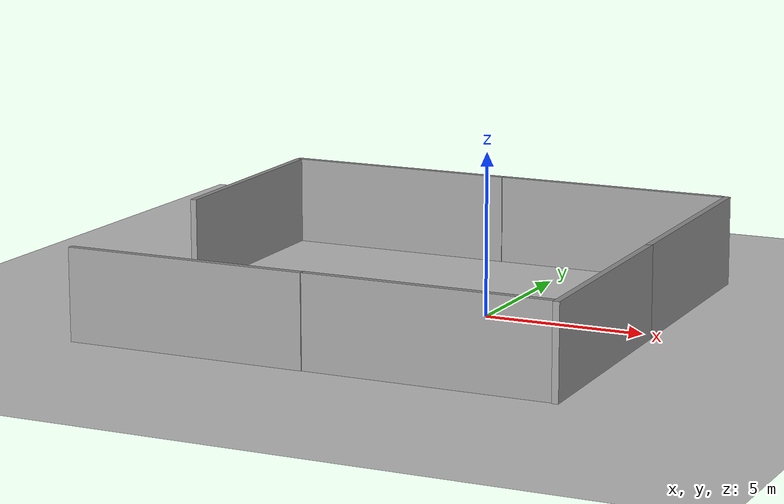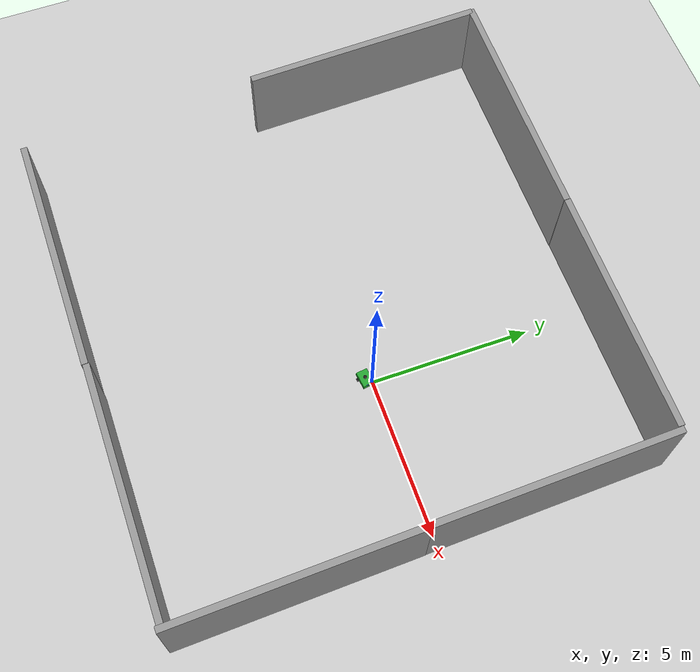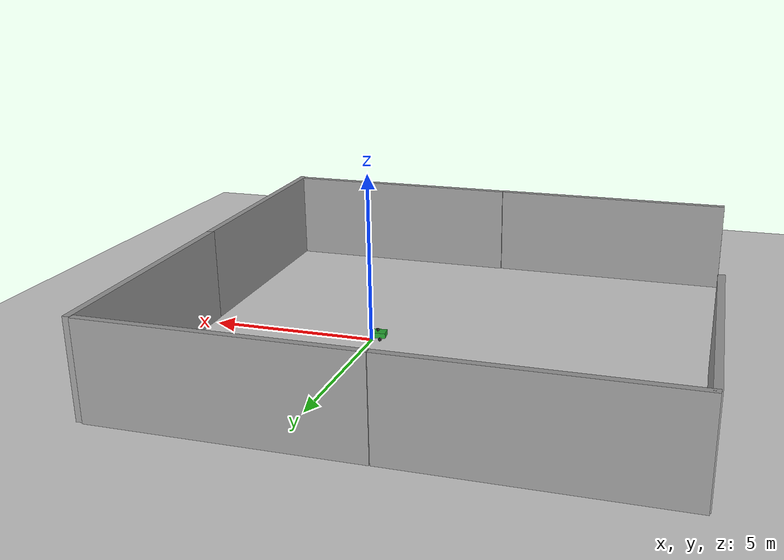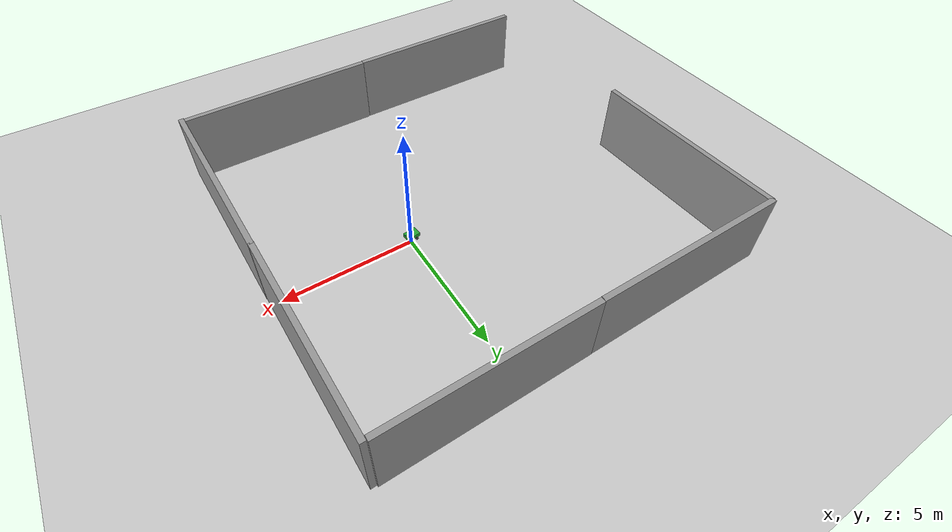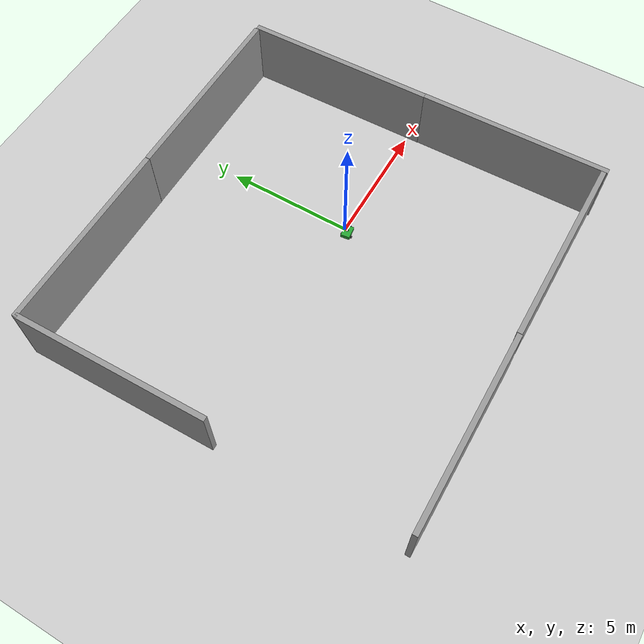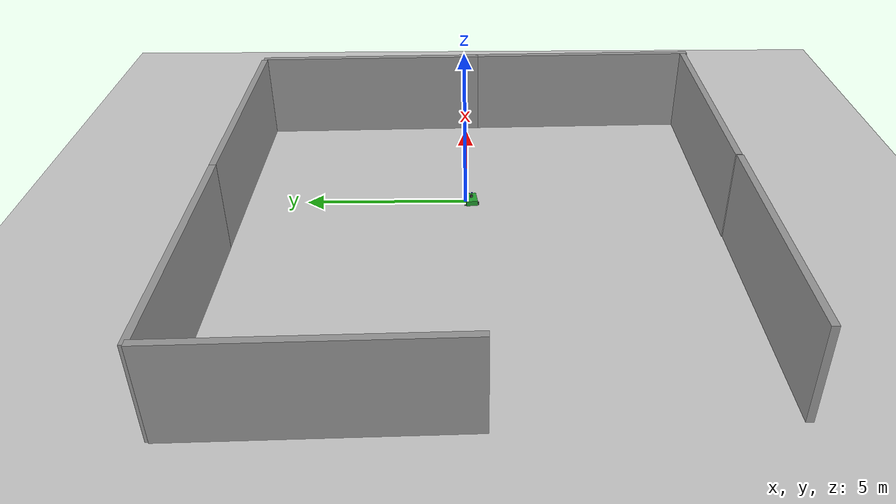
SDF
<sdf version="1.7">
 <world name="default">
  <light name="sun" type="directional">
   <pose>0 0 10 0 -0 0</pose>
   <diffuse>0.8 0.8 0.8 1</diffuse>
   <specular>0.2 0.2 0.2 1</specular>
   <attenuation>
    <range>1000</range>
    <constant>0.9</constant>
    <linear>0.01</linear>
    <quadratic>0.001</quadratic>
   </attenuation>
   <direction>-0.5 0.1 -0.9</direction>
   <spot><inner_angle>0</inner_angle><outer_angle>0</outer_angle><falloff>0</falloff></spot>
  </light>
  <model name="ground_plane">
   <static>1</static>
   <link name="link">
    <collision name="collision">
     <geometry><plane><normal>0 0 1</normal><size>100 100</size></plane></geometry>
     <surface>
      <contact><collide_bitmask>65535</collide_bitmask></contact>
      <friction><ode><mu>100</mu><mu2>50</mu2></ode></friction>
     </surface>
    </collision>
    <visual name="visual">
     <cast_shadows>0</cast_shadows>
     <geometry><plane><normal>0 0 1</normal><size>100 100</size></plane></geometry>
     <material>
      <script><uri>file://media/materials/scripts/gazebo.material</uri><name>Gazebo/Grey</name></script>
     </material>
    </visual>
   </link>
  </model>
  <gravity>0 0 -9.8</gravity>
  <magnetic_field>6e-06 2.3e-05 -4.2e-05</magnetic_field>
  <atmosphere type="adiabatic"/>
  <physics type="ode">
   <max_step_size>0.001</max_step_size>
   <real_time_factor>1</real_time_factor>
   <real_time_update_rate>1000</real_time_update_rate>
  </physics>
  <scene><ambient>0.4 0.4 0.4 1</ambient><background>0.7 0.7 0.7 1</background><shadows>1</shadows></scene>
  <spherical_coordinates>
   <surface_model>EARTH_WGS84</surface_model>
   <latitude_deg>0</latitude_deg>
   <longitude_deg>0</longitude_deg>
   <elevation>0</elevation>
   <heading_deg>0</heading_deg>
  </spherical_coordinates>
  <audio><device>default</device></audio>
  <model name="differential_drive_robot">
   <link name="base_footprint">
    <inertial>
     <pose>0.002469 0 -0.001307 0 -0 0</pose>
     <mass>77.719</mass>
     <inertia>
      <ixx>0.956654</ixx>
      <ixy>0</ixy>
      <ixz>0.00943868</ixz>
      <iyy>1.7886</iyy>
      <iyz>0</iyz>
      <izz>2.38371</izz>
     </inertia>
    </inertial>
    <collision name="base_footprint_fixed_joint_lump__body_link_collision">
     <geometry><box><size>0.5 0.35 0.16</size></box></geometry>
     <surface><friction><ode><mu>0.2</mu><mu2>0.2</mu2></ode></friction></surface>
    </collision>
    <collision name="base_footprint_fixed_joint_lump__camera_link_collision_1">
     <pose>0.25 0.05 0.09 0 0.2 0</pose>
     <geometry><box><size>0.03 0.05 0.05</size></box></geometry>
    </collision>
    <collision name="base_footprint_fixed_joint_lump__caster_link_collision_2">
     <pose>0.1 0 -0.1 0 -0 0</pose>
     <geometry><sphere><radius>0.05</radius></sphere></geometry>
     <surface><friction><ode><mu>2e-06</mu><mu2>2e-06</mu2></ode></friction></surface>
    </collision>
    <collision name="base_footprint_fixed_joint_lump__depth_camera_link_collision_3">
     <pose>0.25 -0.05 0.09 0 0.2 0</pose>
     <geometry><box><size>0.03 0.05 0.05</size></box></geometry>
    </collision>
    <collision name="base_footprint_fixed_joint_lump__gps_link_collision_4">
     <pose>0 0 0.1 0 -0 0</pose>
     <geometry><cylinder><length>0.01</length><radius>0.01</radius></cylinder></geometry>
    </collision>
    <collision name="base_footprint_fixed_joint_lump__imu_link_collision_5">
     <pose>0 0 0.03 0 -0 0</pose>
     <geometry><box><size>0.02 0.02 0.01</size></box></geometry>
    </collision>
    <collision name="base_footprint_fixed_joint_lump__lidar_connector_link_collision_6">
     <pose>0 0 0.08 0 -0 0</pose>
     <geometry><cylinder><length>0.06</length><radius>0.02</radius></cylinder></geometry>
     <surface><friction><ode><mu>2e-06</mu><mu2>2e-06</mu2></ode></friction></surface>
    </collision>
    <collision name="base_footprint_fixed_joint_lump__lidar_link_collision_7">
     <pose>0 0 0.13 0 -0 0</pose>
     <geometry><cylinder><length>0.04</length><radius>0.05</radius></cylinder></geometry>
    </collision>
    <visual name="base_footprint_fixed_joint_lump__body_link_visual">
     <geometry><box><size>0.5 0.35 0.16</size></box></geometry>
     <material>
      <script><name>Gazebo/Green</name><uri>file://media/materials/scripts/gazebo.material</uri></script>
     </material>
    </visual>
    <visual name="base_footprint_fixed_joint_lump__camera_link_visual_1">
     <pose>0.25 0.05 0.09 3.14159 1.3708 3.14159</pose>
     <geometry><box><size>0.03 0.05 0.02</size></box></geometry>
     <material>
      <script><name>Gazebo/Orange</name><uri>file://media/materials/scripts/gazebo.material</uri></script>
     </material>
    </visual>
    <visual name="base_footprint_fixed_joint_lump__caster_link_visual_2">
     <pose>0.1 0 -0.1 0 -0 0</pose>
     <geometry><sphere><radius>0.05</radius></sphere></geometry>
     <material>
      <script><name>Gazebo/Gray</name><uri>file://media/materials/scripts/gazebo.material</uri></script>
     </material>
    </visual>
    <visual name="base_footprint_fixed_joint_lump__depth_camera_link_visual_3">
     <pose>0.25 -0.05 0.09 3.14159 1.3708 3.14159</pose>
     <geometry><box><size>0.03 0.05 0.02</size></box></geometry>
     <material>
      <script><name>Gazebo/Blue</name><uri>file://media/materials/scripts/gazebo.material</uri></script>
     </material>
    </visual>
    <visual name="base_footprint_fixed_joint_lump__gps_link_visual_4">
     <pose>0 0 0.1 0 -0 0</pose>
     <geometry><cylinder><length>0.01</length><radius>0.01</radius></cylinder></geometry>
     <material>
      <script><name>Gazebo/White</name><uri>file://media/materials/scripts/gazebo.material</uri></script>
     </material>
    </visual>
    <visual name="base_footprint_fixed_joint_lump__imu_link_visual_5">
     <pose>0 0 0.03 0 -0 0</pose>
     <geometry><box><size>0.02 0.02 0.01</size></box></geometry>
     <material>
      <script><name>Gazebo/Red</name><uri>file://media/materials/scripts/gazebo.material</uri></script>
     </material>
    </visual>
    <visual name="base_footprint_fixed_joint_lump__lidar_connector_link_visual_6">
     <pose>0 0 0.08 0 -0 0</pose>
     <geometry><cylinder><length>0.06</length><radius>0.02</radius></cylinder></geometry>
     <material>
      <script><name>Gazebo/Black</name><uri>file://media/materials/scripts/gazebo.material</uri></script>
     </material>
    </visual>
    <visual name="base_footprint_fixed_joint_lump__lidar_link_visual_7">
     <pose>0 0 0.13 0 -0 0</pose>
     <geometry><cylinder><length>0.04</length><radius>0.05</radius></cylinder></geometry>
     <material>
      <script><name>Gazebo/Black</name><uri>file://media/materials/scripts/gazebo.material</uri></script>
     </material>
    </visual>
    <sensor name="camera" type="camera">
     <camera>
      <horizontal_fov>1.39626</horizontal_fov>
      <image><width>640</width><height>480</height><format>R8G8B8</format></image>
      <clip><near>0.02</near><far>300</far></clip>
      <noise><type>gaussian</type><mean>0</mean><stddev>0.007</stddev></noise>
     </camera>
     <always_on>1</always_on>
     <update_rate>30</update_rate>
     <visualize>1</visualize>
     <plugin name="camera_controller" filename="libgazebo_ros_camera.so">
      <ros>
       <namespace>/</namespace>
       <remapping>image_raw:=camera/image_raw</remapping>
       <remapping>camera_info:=camera/camera_info</remapping>
      </ros>
      <output_type>sensor_msgs/Image</output_type>
      <frame_name>camera_optical_frame</frame_name>
      <camera_name>camera</camera_name>
      <update_rate>30.0</update_rate>
     </plugin>
     <pose>0.25 0.05 0.09 0 0.2 0</pose>
    </sensor>
    <sensor name="depth_camera" type="depth">
     <camera>
      <horizontal_fov>1.0472</horizontal_fov>
      <image><width>640</width><height>480</height><format>R8G8B8</format></image>
      <clip><near>0.05</near><far>8</far></clip>
      <noise><type>gaussian</type><mean>0</mean><stddev>0.007</stddev></noise>
     </camera>
     <always_on>1</always_on>
     <update_rate>20</update_rate>
     <visualize>1</visualize>
     <plugin name="depth_camera_controller" filename="libgazebo_ros_camera.so">
      <ros>
       <namespace>/</namespace>
       <remapping>image_raw:=depth_camera/image_raw</remapping>
       <remapping>camera_info:=depth_camera/camera_info</remapping>
       <remapping>points:=depth_camera/points</remapping>
      </ros>
      <camera_name>depth_camera</camera_name>
      <frame_name>depth_camera_optical_frame</frame_name>
      <hack_baseline>0.07</hack_baseline>
      <output_type>sensor_msgs/PointCloud2</output_type>
      <distortion_k1>0.0</distortion_k1>
      <distortion_k2>0.0</distortion_k2>
      <distortion_k3>0.0</distortion_k3>
      <distortion_t1>0.0</distortion_t1>
      <distortion_t2>0.0</distortion_t2>
     </plugin>
     <pose>0.25 -0.05 0.09 0 0.2 0</pose>
    </sensor>
    <sensor name="gps" type="gps">
     <always_on>1</always_on>
     <update_rate>10</update_rate>
     <visualize>1</visualize>
     <topic>gps/fix</topic>
     <plugin name="gps_controller" filename="libgazebo_ros_gps_sensor.so">
      <ros><namespace>/</namespace><remapping>~/out:=gps/fix</remapping></ros>
      <frame_name>gps_link</frame_name>
      <reference_latitude>49.9</reference_latitude>
      <reference_longitude>8.9</reference_longitude>
      <reference_altitude>0.0</reference_altitude>
      <reference_heading>0.0</reference_heading>
      <position_noise><x>0.05</x><y>0.05</y><z>0.05</z></position_noise>
      <velocity_noise><x>0.01</x><y>0.01</y><z>0.01</z></velocity_noise>
     </plugin>
     <pose>0 0 0.1 0 -0 0</pose>
    </sensor>
    <sensor name="imu_sensor" type="imu">
     <always_on>1</always_on>
     <update_rate>100</update_rate>
     <visualize>1</visualize>
     <topic>imu</topic>
     <plugin name="imu_plugin" filename="libgazebo_ros_imu_sensor.so">
      <ros><namespace>/</namespace><remapping>~/out:=imu/data</remapping></ros>
      <topicName>imu/data</topicName>
      <bodyName>imu_link</bodyName>
      <frameName>imu_link</frameName>
      <initialOrientationAsReference>0</initialOrientationAsReference>
      <accelDrift>0.005 0.005 0.005</accelDrift>
      <accelGaussianNoise>0.005 0.005 0.005</accelGaussianNoise>
      <rateDrift>0.005 0.005 0.005</rateDrift>
      <rateGaussianNoise>0.005 0.005 0.005</rateGaussianNoise>
      <headingDrift>0.005</headingDrift>
      <headingGaussianNoise>0.005</headingGaussianNoise>
     </plugin>
     <pose>0 0 0.03 0 -0 0</pose>
    </sensor>
    <sensor name="lidar" type="ray">
     <visualize>1</visualize>
     <update_rate>10</update_rate>
     <ray>
      <scan>
       <horizontal>
        <samples>360</samples>
        <resolution>1</resolution>
        <min_angle>-3.14159</min_angle>
        <max_angle>3.14159</max_angle>
       </horizontal>
       <vertical><samples>1</samples><min_angle>0</min_angle><max_angle>0</max_angle></vertical>
      </scan>
      <range><min>0.1</min><max>10</max><resolution>0.01</resolution></range>
      <noise><type>gaussian</type><mean>0</mean><stddev>0.01</stddev></noise>
     </ray>
     <plugin name="lidar_controller" filename="libgazebo_ros_ray_sensor.so">
      <ros><namespace>/</namespace><remapping>~/out:=scan</remapping></ros>
      <output_type>sensor_msgs/LaserScan</output_type>
      <frame_name>lidar_link</frame_name>
     </plugin>
     <pose>0 0 0.13 0 -0 0</pose>
    </sensor>
   </link>
   <joint name="left_wheel_joint" type="revolute">
    <pose relative_to="base_footprint">-0.1 0.2 -0.1 0 -0 0</pose>
    <parent>base_footprint</parent>
    <child>left_wheel_link</child>
    <axis>
     <xyz>0 1 0</xyz>
     <limit><effort>1000</effort><velocity>1000</velocity><lower>-1e+16</lower><upper>1e+16</upper></limit>
     <dynamics>
      <damping>1</damping>
      <friction>1</friction>
      <spring_reference>0</spring_reference>
      <spring_stiffness>0</spring_stiffness>
     </dynamics>
    </axis>
   </joint>
   <link name="left_wheel_link">
    <pose relative_to="left_wheel_joint">0 0 0 0 -0 0</pose>
    <inertial>
     <mass>1.06421</mass>
     <inertia>
      <ixx>0.000886845</ixx>
      <ixy>0</ixy>
      <ixz>0</ixz>
      <iyy>0.000886845</iyy>
      <iyz>0</iyz>
      <izz>0.00133027</izz>
     </inertia>
    </inertial>
    <collision name="left_wheel_link_collision">
     <pose>0 0 0 1.57079 -0 0</pose>
     <geometry><cylinder><length>0.05</length><radius>0.05</radius></cylinder></geometry>
     <surface><friction><ode><mu>0.2</mu><mu2>0.2</mu2></ode></friction></surface>
    </collision>
    <visual name="left_wheel_link_visual">
     <pose>0 0 0 1.57079 -0 0</pose>
     <geometry><cylinder><length>0.05</length><radius>0.05</radius></cylinder></geometry>
     <material>
      <script><name>Gazebo/Black</name><uri>file://media/materials/scripts/gazebo.material</uri></script>
     </material>
    </visual>
   </link>
   <joint name="right_wheel_joint" type="revolute">
    <pose relative_to="base_footprint">-0.1 -0.2 -0.1 0 -0 0</pose>
    <parent>base_footprint</parent>
    <child>right_wheel_link</child>
    <axis>
     <xyz>0 1 0</xyz>
     <limit><effort>1000</effort><velocity>1000</velocity><lower>-1e+16</lower><upper>1e+16</upper></limit>
     <dynamics>
      <damping>1</damping>
      <friction>1</friction>
      <spring_reference>0</spring_reference>
      <spring_stiffness>0</spring_stiffness>
     </dynamics>
    </axis>
   </joint>
   <link name="right_wheel_link">
    <pose relative_to="right_wheel_joint">0 0 0 0 -0 0</pose>
    <inertial>
     <mass>1.06421</mass>
     <inertia>
      <ixx>0.000886845</ixx>
      <ixy>0</ixy>
      <ixz>0</ixz>
      <iyy>0.000886845</iyy>
      <iyz>0</iyz>
      <izz>0.00133027</izz>
     </inertia>
    </inertial>
    <collision name="right_wheel_link_collision">
     <pose>0 0 0 1.57079 -0 0</pose>
     <geometry><cylinder><length>0.05</length><radius>0.05</radius></cylinder></geometry>
     <surface><friction><ode><mu>0.2</mu><mu2>0.2</mu2></ode></friction></surface>
    </collision>
    <visual name="right_wheel_link_visual">
     <pose>0 0 0 1.57079 -0 0</pose>
     <geometry><cylinder><length>0.05</length><radius>0.05</radius></cylinder></geometry>
     <material>
      <script><name>Gazebo/Black</name><uri>file://media/materials/scripts/gazebo.material</uri></script>
     </material>
    </visual>
   </link>
   <static>0</static>
   <plugin name="diff_drive" filename="libgazebo_ros_diff_drive.so">
    <num_wheel_pairs>1</num_wheel_pairs>
    <left_joint>left_wheel_joint</left_joint>
    <right_joint>right_wheel_joint</right_joint>
    <wheel_separation>0.39999999999999997</wheel_separation>
    <wheel_diameter>0.1</wheel_diameter>
    <max_wheel_torque>5000</max_wheel_torque>
    <max_wheel_acceleration>7.0</max_wheel_acceleration>
    <publish_odom>1</publish_odom>
    <publish_odom_tf>1</publish_odom_tf>
    <publish_wheel_tf>1</publish_wheel_tf>
    <odometry_frame>odom</odometry_frame>
    <robot_base_frame>base_footprint</robot_base_frame>
   </plugin>
   <pose>-0.130258 -0.178111 0.149999 3e-06 -1.1e-05 0.125383</pose>
  </model>
  <model name="enclosed_obstacles">
   <link name="link">
    <pose>0 0 1.4 0 -0 0</pose>
    <visual name="visual">
     <cast_shadows>0</cast_shadows>
     <geometry><box><size>7.5 0.2 2.8</size></box></geometry>
     <material>
      <script>
       <uri>model://grey_wall/materials/scripts</uri>
       <uri>model://grey_wall/materials/textures</uri>
       <name>vrc/grey_wall</name>
      </script>
      <shader type="pixel"/>
     </material>
    </visual>
    <collision name="collision">
     <geometry><box><size>7.5 0.2 2.8</size></box></geometry>
     <surface>
      <friction>
       <ode><mu>1</mu><mu2>1</mu2><fdir1>0 0 0</fdir1><slip1>0</slip1><slip2>0</slip2></ode>
       <torsional>
        <coefficient>1</coefficient>
        <patch_radius>0</patch_radius>
        <surface_radius>0</surface_radius>
        <use_patch_radius>1</use_patch_radius>
        <ode><slip>0</slip></ode>
       </torsional>
      </friction>
      <bounce><restitution_coefficient>0</restitution_coefficient><threshold>1e+06</threshold></bounce>
      <contact>
       <collide_without_contact>0</collide_without_contact>
       <collide_without_contact_bitmask>1</collide_without_contact_bitmask>
       <collide_bitmask>1</collide_bitmask>
       <ode>
        <soft_cfm>0</soft_cfm>
        <soft_erp>0.2</soft_erp>
        <kp>1e+13</kp>
        <kd>1</kd>
        <max_vel>0.01</max_vel>
        <min_depth>0</min_depth>
       </ode>
       <bullet>
        <split_impulse>1</split_impulse>
        <split_impulse_penetration_threshold>-0.01</split_impulse_penetration_threshold>
        <soft_cfm>0</soft_cfm>
        <soft_erp>0.2</soft_erp>
        <kp>1e+13</kp>
        <kd>1</kd>
       </bullet>
      </contact>
     </surface>
    </collision>
   </link>
   <static>1</static>
   <pose>1.24116 6.995 0 0 -0 0</pose>
  </model>
  <model name="enclosed_obstacles_0">
   <link name="link">
    <pose>0 0 1.4 0 -0 0</pose>
    <visual name="visual">
     <cast_shadows>0</cast_shadows>
     <geometry><box><size>7.5 0.2 2.8</size></box></geometry>
     <material>
      <script>
       <uri>model://grey_wall/materials/scripts</uri>
       <uri>model://grey_wall/materials/textures</uri>
       <name>vrc/grey_wall</name>
      </script>
      <shader type="pixel"/>
     </material>
    </visual>
    <collision name="collision">
     <geometry><box><size>7.5 0.2 2.8</size></box></geometry>
     <surface>
      <friction>
       <ode><mu>1</mu><mu2>1</mu2><fdir1>0 0 0</fdir1><slip1>0</slip1><slip2>0</slip2></ode>
       <torsional>
        <coefficient>1</coefficient>
        <patch_radius>0</patch_radius>
        <surface_radius>0</surface_radius>
        <use_patch_radius>1</use_patch_radius>
        <ode><slip>0</slip></ode>
       </torsional>
      </friction>
      <bounce><restitution_coefficient>0</restitution_coefficient><threshold>1e+06</threshold></bounce>
      <contact>
       <collide_without_contact>0</collide_without_contact>
       <collide_without_contact_bitmask>1</collide_without_contact_bitmask>
       <collide_bitmask>1</collide_bitmask>
       <ode>
        <soft_cfm>0</soft_cfm>
        <soft_erp>0.2</soft_erp>
        <kp>1e+13</kp>
        <kd>1</kd>
        <max_vel>0.01</max_vel>
        <min_depth>0</min_depth>
       </ode>
       <bullet>
        <split_impulse>1</split_impulse>
        <split_impulse_penetration_threshold>-0.01</split_impulse_penetration_threshold>
        <soft_cfm>0</soft_cfm>
        <soft_erp>0.2</soft_erp>
        <kp>1e+13</kp>
        <kd>1</kd>
       </bullet>
      </contact>
     </surface>
    </collision>
   </link>
   <static>1</static>
   <pose>-6.27089 6.98765 0 0 -0 0</pose>
  </model>
  <model name="enclosed_obstacles_clone">
   <link name="link">
    <pose>0 0 1.4 0 -0 0</pose>
    <visual name="visual">
     <cast_shadows>0</cast_shadows>
     <geometry><box><size>7.5 0.2 2.8</size></box></geometry>
     <material>
      <script>
       <uri>model://grey_wall/materials/scripts</uri>
       <uri>model://grey_wall/materials/textures</uri>
       <name>vrc/grey_wall</name>
      </script>
      <shader type="pixel"/>
     </material>
    </visual>
    <collision name="collision">
     <geometry><box><size>7.5 0.2 2.8</size></box></geometry>
     <surface>
      <friction>
       <ode><mu>1</mu><mu2>1</mu2><fdir1>0 0 0</fdir1><slip1>0</slip1><slip2>0</slip2></ode>
       <torsional>
        <coefficient>1</coefficient>
        <patch_radius>0</patch_radius>
        <surface_radius>0</surface_radius>
        <use_patch_radius>1</use_patch_radius>
        <ode><slip>0</slip></ode>
       </torsional>
      </friction>
      <bounce><restitution_coefficient>0</restitution_coefficient><threshold>1e+06</threshold></bounce>
      <contact>
       <collide_without_contact>0</collide_without_contact>
       <collide_without_contact_bitmask>1</collide_without_contact_bitmask>
       <collide_bitmask>1</collide_bitmask>
       <ode>
        <soft_cfm>0</soft_cfm>
        <soft_erp>0.2</soft_erp>
        <kp>1e+13</kp>
        <kd>1</kd>
        <max_vel>0.01</max_vel>
        <min_depth>0</min_depth>
       </ode>
       <bullet>
        <split_impulse>1</split_impulse>
        <split_impulse_penetration_threshold>-0.01</split_impulse_penetration_threshold>
        <soft_cfm>0</soft_cfm>
        <soft_erp>0.2</soft_erp>
        <kp>1e+13</kp>
        <kd>1</kd>
       </bullet>
      </contact>
     </surface>
    </collision>
   </link>
   <static>1</static>
   <pose>1.62732 -7.74172 0 0 -0 0</pose>
  </model>
  <model name="enclosed_obstacles_clone_0">
   <link name="link">
    <pose>0 0 1.4 0 -0 0</pose>
    <visual name="visual">
     <cast_shadows>0</cast_shadows>
     <geometry><box><size>7.5 0.2 2.8</size></box></geometry>
     <material>
      <script>
       <uri>model://grey_wall/materials/scripts</uri>
       <uri>model://grey_wall/materials/textures</uri>
       <name>vrc/grey_wall</name>
      </script>
      <shader type="pixel"/>
     </material>
    </visual>
    <collision name="collision">
     <geometry><box><size>7.5 0.2 2.8</size></box></geometry>
     <surface>
      <friction>
       <ode><mu>1</mu><mu2>1</mu2><fdir1>0 0 0</fdir1><slip1>0</slip1><slip2>0</slip2></ode>
       <torsional>
        <coefficient>1</coefficient>
        <patch_radius>0</patch_radius>
        <surface_radius>0</surface_radius>
        <use_patch_radius>1</use_patch_radius>
        <ode><slip>0</slip></ode>
       </torsional>
      </friction>
      <bounce><restitution_coefficient>0</restitution_coefficient><threshold>1e+06</threshold></bounce>
      <contact>
       <collide_without_contact>0</collide_without_contact>
       <collide_without_contact_bitmask>1</collide_without_contact_bitmask>
       <collide_bitmask>1</collide_bitmask>
       <ode>
        <soft_cfm>0</soft_cfm>
        <soft_erp>0.2</soft_erp>
        <kp>1e+13</kp>
        <kd>1</kd>
        <max_vel>0.01</max_vel>
        <min_depth>0</min_depth>
       </ode>
       <bullet>
        <split_impulse>1</split_impulse>
        <split_impulse_penetration_threshold>-0.01</split_impulse_penetration_threshold>
        <soft_cfm>0</soft_cfm>
        <soft_erp>0.2</soft_erp>
        <kp>1e+13</kp>
        <kd>1</kd>
       </bullet>
      </contact>
     </surface>
    </collision>
   </link>
   <static>1</static>
   <pose>-5.88173 -7.7667 0 0 -0 0</pose>
  </model>
  <model name="enclosed_obstacles_clone_1">
   <link name="link">
    <pose>0 0 1.4 0 -0 0</pose>
    <visual name="visual">
     <cast_shadows>0</cast_shadows>
     <geometry><box><size>7.5 0.2 2.8</size></box></geometry>
     <material>
      <script>
       <uri>model://grey_wall/materials/scripts</uri>
       <uri>model://grey_wall/materials/textures</uri>
       <name>vrc/grey_wall</name>
      </script>
      <shader type="pixel"/>
     </material>
    </visual>
    <collision name="collision">
     <geometry><box><size>7.5 0.2 2.8</size></box></geometry>
     <surface>
      <friction>
       <ode><mu>1</mu><mu2>1</mu2><fdir1>0 0 0</fdir1><slip1>0</slip1><slip2>0</slip2></ode>
       <torsional>
        <coefficient>1</coefficient>
        <patch_radius>0</patch_radius>
        <surface_radius>0</surface_radius>
        <use_patch_radius>1</use_patch_radius>
        <ode><slip>0</slip></ode>
       </torsional>
      </friction>
      <bounce><restitution_coefficient>0</restitution_coefficient><threshold>1e+06</threshold></bounce>
      <contact>
       <collide_without_contact>0</collide_without_contact>
       <collide_without_contact_bitmask>1</collide_without_contact_bitmask>
       <collide_bitmask>1</collide_bitmask>
       <ode>
        <soft_cfm>0</soft_cfm>
        <soft_erp>0.2</soft_erp>
        <kp>1e+13</kp>
        <kd>1</kd>
        <max_vel>0.01</max_vel>
        <min_depth>0</min_depth>
       </ode>
       <bullet>
        <split_impulse>1</split_impulse>
        <split_impulse_penetration_threshold>-0.01</split_impulse_penetration_threshold>
        <soft_cfm>0</soft_cfm>
        <soft_erp>0.2</soft_erp>
        <kp>1e+13</kp>
        <kd>1</kd>
       </bullet>
      </contact>
     </surface>
    </collision>
   </link>
   <static>1</static>
   <pose>5.19466 3.29122 0 0 0 -1.54612</pose>
  </model>
  <model name="enclosed_obstacles_clone_1_clone">
   <link name="link">
    <pose>0 0 1.4 0 -0 0</pose>
    <visual name="visual">
     <cast_shadows>0</cast_shadows>
     <geometry><box><size>7.5 0.2 2.8</size></box></geometry>
     <material>
      <script>
       <uri>model://grey_wall/materials/scripts</uri>
       <uri>model://grey_wall/materials/textures</uri>
       <name>vrc/grey_wall</name>
      </script>
      <shader type="pixel"/>
     </material>
    </visual>
    <collision name="collision">
     <geometry><box><size>7.5 0.2 2.8</size></box></geometry>
     <surface>
      <friction>
       <ode><mu>1</mu><mu2>1</mu2><fdir1>0 0 0</fdir1><slip1>0</slip1><slip2>0</slip2></ode>
       <torsional>
        <coefficient>1</coefficient>
        <patch_radius>0</patch_radius>
        <surface_radius>0</surface_radius>
        <use_patch_radius>1</use_patch_radius>
        <ode><slip>0</slip></ode>
       </torsional>
      </friction>
      <bounce><restitution_coefficient>0</restitution_coefficient><threshold>1e+06</threshold></bounce>
      <contact>
       <collide_without_contact>0</collide_without_contact>
       <collide_without_contact_bitmask>1</collide_without_contact_bitmask>
       <collide_bitmask>1</collide_bitmask>
       <ode>
        <soft_cfm>0</soft_cfm>
        <soft_erp>0.2</soft_erp>
        <kp>1e+13</kp>
        <kd>1</kd>
        <max_vel>0.01</max_vel>
        <min_depth>0</min_depth>
       </ode>
       <bullet>
        <split_impulse>1</split_impulse>
        <split_impulse_penetration_threshold>-0.01</split_impulse_penetration_threshold>
        <soft_cfm>0</soft_cfm>
        <soft_erp>0.2</soft_erp>
        <kp>1e+13</kp>
        <kd>1</kd>
       </bullet>
      </contact>
     </surface>
    </collision>
   </link>
   <static>1</static>
   <pose>5.38803 -4.14031 0 0 0 -1.54612</pose>
  </model>
  <model name="enclosed_obstacles_clone_1_clone_0">
   <link name="link">
    <pose>0 0 1.4 0 -0 0</pose>
    <visual name="visual">
     <cast_shadows>0</cast_shadows>
     <geometry><box><size>7.5 0.2 2.8</size></box></geometry>
     <material>
      <script>
       <uri>model://grey_wall/materials/scripts</uri>
       <uri>model://grey_wall/materials/textures</uri>
       <name>vrc/grey_wall</name>
      </script>
      <shader type="pixel"/>
     </material>
    </visual>
    <collision name="collision">
     <geometry><box><size>7.5 0.2 2.8</size></box></geometry>
     <surface>
      <friction>
       <ode><mu>1</mu><mu2>1</mu2><fdir1>0 0 0</fdir1><slip1>0</slip1><slip2>0</slip2></ode>
       <torsional>
        <coefficient>1</coefficient>
        <patch_radius>0</patch_radius>
        <surface_radius>0</surface_radius>
        <use_patch_radius>1</use_patch_radius>
        <ode><slip>0</slip></ode>
       </torsional>
      </friction>
      <bounce><restitution_coefficient>0</restitution_coefficient><threshold>1e+06</threshold></bounce>
      <contact>
       <collide_without_contact>0</collide_without_contact>
       <collide_without_contact_bitmask>1</collide_without_contact_bitmask>
       <collide_bitmask>1</collide_bitmask>
       <ode>
        <soft_cfm>0</soft_cfm>
        <soft_erp>0.2</soft_erp>
        <kp>1e+13</kp>
        <kd>1</kd>
        <max_vel>0.01</max_vel>
        <min_depth>0</min_depth>
       </ode>
       <bullet>
        <split_impulse>1</split_impulse>
        <split_impulse_penetration_threshold>-0.01</split_impulse_penetration_threshold>
        <soft_cfm>0</soft_cfm>
        <soft_erp>0.2</soft_erp>
        <kp>1e+13</kp>
        <kd>1</kd>
       </bullet>
      </contact>
     </surface>
    </collision>
   </link>
   <static>1</static>
   <pose>-9.86007 3.2486 0 0 0 -1.54612</pose>
  </model>
 </world>
</sdf>
